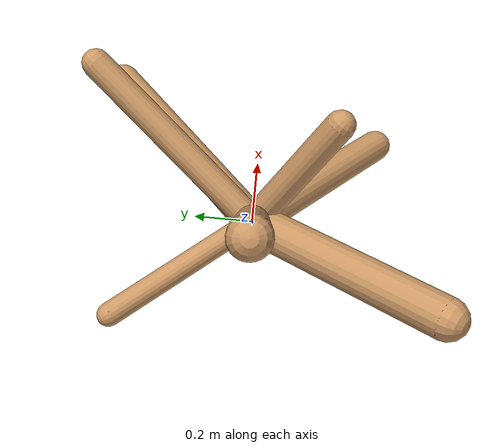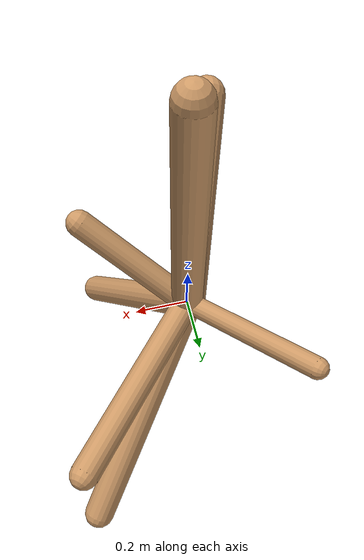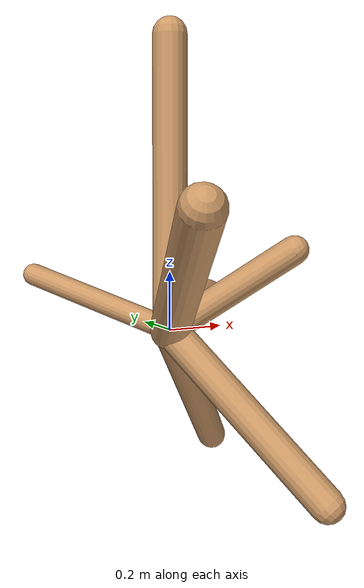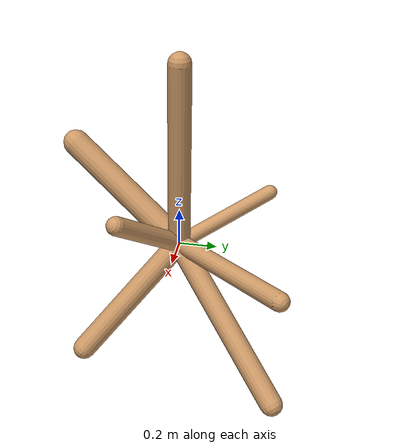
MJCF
<!--
                    joint_number: 6
                    -->
                    <mujoco model="randomrobot">
                        <compiler angle="degree" coordinate="global" inertiafromgeom="true"/>
                        <default>
                        <joint armature="0.01" damping=".1" limited="true"/>
                        <geom conaffinity="0" condim="3" contype="1" density="1000" friction="0.8 .1 .1" rgba="0.8 0.6 .4 1"/>
                        </default>
                        <option integrator="RK4" timestep="0.002"/>
                        <worldbody>
                    <body name='torso' pos='0.00 0.00 0.77'><geom fromto='0 0 0 0.00 0.00 1.00' name='torso_geom' size='0.06' type='capsule'/><inertial mass='0.3'/><body name='L0_D1' pos='0.00 0.00 0.38'><joint axis='1 0 0' name='L0_D1_joint' pos='0 0 0' range='13.43 50.57' type='hinge'/><geom fromto='0 0 0 0.49 0.58 0.05' name='L0_D1_geom' size='0.05' type='capsule'/><inertial mass='0.3'/><body name='L1_D0' pos='0.31 0.38 0.03'><joint axis='0 0 1' name='L1_D0_joint' pos='0 0 0' range='79.74 98.88' type='hinge'/><geom fromto='0 0 0 0.51 0.58 -0.59' name='L1_D0_geom' size='0.06' type='capsule'/><inertial mass='0.3'/></body></body><body name='L2_D1' pos='0.00 0.00 0.79'><joint axis='1 0 0' name='L2_D1_joint' pos='0 0 0' range='15.55 113.63' type='hinge'/><geom fromto='0 0 0 -0.34 0.44 0.17' name='L2_D1_geom' size='0.04' type='capsule'/><inertial mass='0.3'/><body name='L3_D0' pos='-0.20 0.26 0.10'><joint axis='0 0 1' name='L3_D0_joint' pos='0 0 0' range='58.32 72.31' type='hinge'/><geom fromto='0 0 0 0.34 -0.25 0.28' name='L3_D0_geom' size='0.05' type='capsule'/><inertial mass='0.3'/></body></body><body name='L4_D1' pos='0.00 0.00 0.69'><joint axis='0 1 0' name='L4_D1_joint' pos='0 0 0' range='24.36 112.79' type='hinge'/><geom fromto='0 0 0 0.33 -0.46 -0.53' name='L4_D1_geom' size='0.06' type='capsule'/><inertial mass='0.3'/><body name='L5_D0' pos='0.01 -0.01 -0.01'><joint axis='1 0 0' name='L5_D0_joint' pos='0 0 0' range='75.00 110.83' type='hinge'/><geom fromto='0 0 0 -0.22 -0.61 0.43' name='L5_D0_geom' size='0.07' type='capsule'/><inertial mass='0.3'/></body></body></body>
                        </worldbody>
                    </mujoco>
